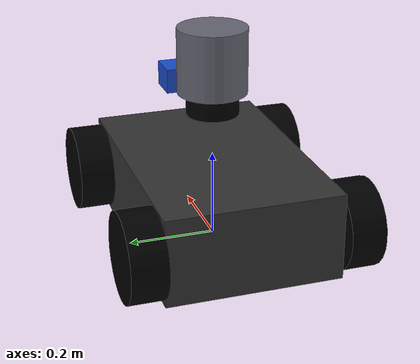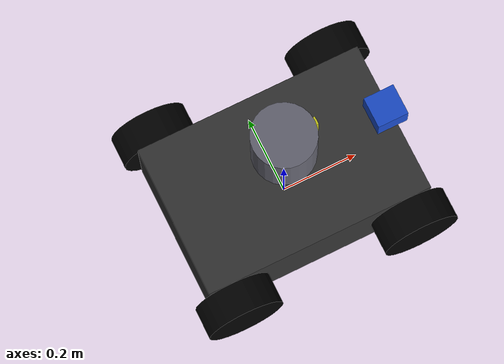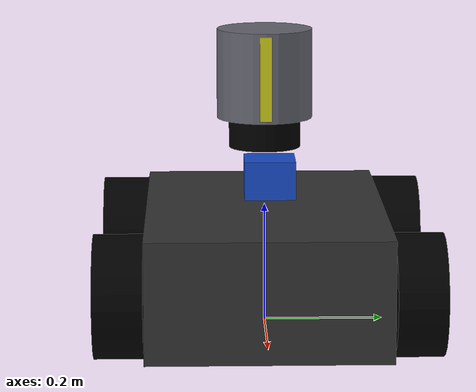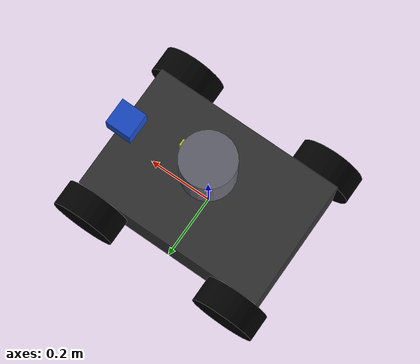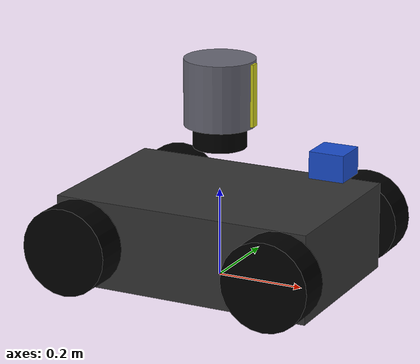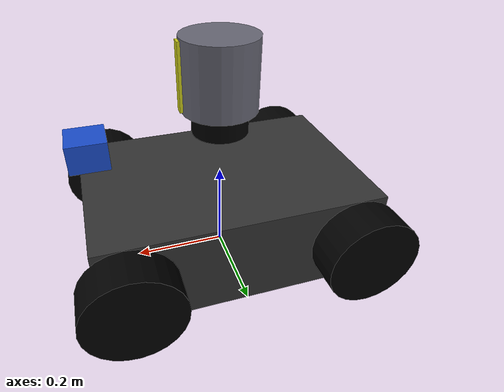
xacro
<?xml version="1.0"?>
<robot xmlns:xacro="http://www.ros.org/wiki/xacro" name="nuclear_robot">

  <xacro:property name="base_mass" value="15.0"/>
  <xacro:property name="base_length" value="0.6"/>
  <xacro:property name="base_width" value="0.4"/>
  <xacro:property name="base_height" value="0.2"/>
  <xacro:property name="wheel_mass" value="2.0"/>
  <xacro:property name="wheel_radius" value="0.1"/>
  <xacro:property name="wheel_width" value="0.08"/>
  <xacro:property name="ptz_mass" value="1.5"/>

  <material name="dark_grey"><color rgba="0.2 0.2 0.2 1.0"/></material>
  <material name="black"><color rgba="0.0 0.0 0.0 1.0"/></material>
  <material name="blue"><color rgba="0.1 0.3 0.8 1.0"/></material>
  <material name="lead_grey"><color rgba="0.4 0.4 0.45 1.0"/></material>
  <material name="warning_yellow"><color rgba="0.8 0.8 0.1 1.0"/></material>

  <!-- 新增的虚拟根节点，解决 Gazebo / ODE 惯性报错退出 (Exit Code 255) 问题 -->
  <link name="base_footprint"/>

  <joint name="base_footprint_to_base_link" type="fixed">
    <parent link="base_footprint"/>
    <child link="base_link"/>
    <origin xyz="0 0 0" rpy="0 0 0"/>
  </joint>

  <link name="base_link">
    <visual>
      <origin xyz="0 0 ${wheel_radius}" rpy="0 0 0"/>
      <geometry><box size="${base_length} ${base_width} ${base_height}"/></geometry>
      <material name="dark_grey"/>
    </visual>
    <collision>
      <origin xyz="0 0 ${wheel_radius}" rpy="0 0 0"/>
      <geometry><box size="${base_length} ${base_width} ${base_height}"/></geometry>
    </collision>
    <inertial>
      <origin xyz="0 0 ${wheel_radius}" rpy="0 0 0"/>
      <mass value="${base_mass}"/>
      <inertia ixx="0.25" ixy="0" ixz="0" iyy="0.5" iyz="0" izz="0.6"/>
    </inertial>
  </link>
  <gazebo reference="base_link"><material>Gazebo/DarkGrey</material></gazebo>

  <xacro:macro name="wheel" params="prefix x_reflect y_reflect">
    <link name="${prefix}_wheel">
      <visual>
        <origin xyz="0 0 0" rpy="1.5708 0 0"/>
        <geometry><cylinder radius="${wheel_radius}" length="${wheel_width}"/></geometry>
        <material name="black"/>
      </visual>
      <collision>
        <origin xyz="0 0 0" rpy="1.5708 0 0"/>
        <geometry><cylinder radius="${wheel_radius}" length="${wheel_width}"/></geometry>
      </collision>
      <inertial>
        <mass value="${wheel_mass}"/>
        <inertia ixx="0.01" ixy="0" ixz="0" iyy="0.01" iyz="0" izz="0.01"/>
      </inertial>
    </link>
    <joint name="${prefix}_wheel_joint" type="continuous">
      <parent link="base_link"/>
      <child link="${prefix}_wheel"/>
      <origin xyz="${x_reflect*base_length/2.5} ${y_reflect*(base_width/2 + wheel_width/2)} ${wheel_radius}" rpy="0 0 0"/>
      <axis xyz="0 1 0"/>
    </joint>
    <gazebo reference="${prefix}_wheel"><material>Gazebo/FlatBlack</material></gazebo>
  </xacro:macro>

  <xacro:wheel prefix="front_left" x_reflect="1" y_reflect="1" />
  <xacro:wheel prefix="front_right" x_reflect="1" y_reflect="-1" />
  <xacro:wheel prefix="rear_left" x_reflect="-1" y_reflect="1" />
  <xacro:wheel prefix="rear_right" x_reflect="-1" y_reflect="-1" />

  <link name="lidar_link">
    <visual>
      <geometry><box size="0.08 0.08 0.06"/></geometry>
      <material name="blue"/>
    </visual>
    <collision>
      <geometry><box size="0.08 0.08 0.06"/></geometry>
    </collision>
  </link>
  <joint name="lidar_joint" type="fixed">
    <parent link="base_link"/>
    <child link="lidar_link"/>
    <origin xyz="${base_length/2.2} 0 ${base_height + 0.1}" rpy="0 0 0"/>
  </joint>

  <gazebo reference="lidar_link">
    <material>Gazebo/Blue</material>
    <sensor type="ray" name="solid_state_lidar">
      <pose>0 0 0 0 0 0</pose>
      <visualize>true</visualize> <update_rate>20</update_rate>
      <ray>
        <scan>
          <horizontal>
            <samples>500</samples>
            <resolution>1</resolution>
            <min_angle>-1.57</min_angle> <max_angle>1.57</max_angle>
          </horizontal>
        </scan>
        <range><min>0.10</min><max>30.0</max><resolution>0.01</resolution></range>
      </ray>
      <plugin name="gazebo_ros_laser" filename="libgazebo_ros_laser.so">
        <topicName>scan</topicName>
        <frameName>lidar_link</frameName>
      </plugin>
    </sensor>
  </gazebo>

  <link name="ptz_base_link">
    <visual>
      <geometry><cylinder radius="0.06" length="0.05"/></geometry>
      <material name="black"/>
    </visual>
  </link>
  <joint name="ptz_base_joint" type="fixed">
    <parent link="base_link"/>
    <child link="ptz_base_link"/>
    <origin xyz="0 0 ${base_height + 0.125}" rpy="0 0 0"/>
  </joint>
  <gazebo reference="ptz_base_link"><material>Gazebo/FlatBlack</material></gazebo>

  <link name="aoa_detector_link">
    <visual>
      <geometry><cylinder radius="0.08" length="0.15"/></geometry>
      <material name="lead_grey"/>
    </visual>
    <inertial>
      <mass value="${ptz_mass}"/>
      <inertia ixx="0.01" ixy="0" ixz="0" iyy="0.01" iyz="0" izz="0.01"/>
    </inertial>
  </link>
  <joint name="ptz_pan_joint" type="continuous">
    <parent link="ptz_base_link"/>
    <child link="aoa_detector_link"/>
    <origin xyz="0 0 0.1" rpy="0 0 0"/>
    <axis xyz="0 0 1"/>
  </joint>
  <gazebo reference="aoa_detector_link"><material>Gazebo/Grey</material></gazebo>

  <link name="collimator_slit_link">
    <visual>
      <geometry><box size="0.09 0.02 0.14"/></geometry>
      <material name="warning_yellow"/>
    </visual>
  </link>
  <joint name="slit_joint" type="fixed">
    <parent link="aoa_detector_link"/>
    <child link="collimator_slit_link"/>
    <origin xyz="0.04 0 0" rpy="0 0 0"/>
  </joint>
  <gazebo reference="collimator_slit_link"><material>Gazebo/Yellow</material></gazebo>

  <gazebo>
    <plugin name="p3d_base_controller" filename="libgazebo_ros_p3d.so">
      <alwaysOn>true</alwaysOn>
      <updateRate>50.0</updateRate>
      <bodyName>base_link</bodyName>
      <topicName>odom</topicName>
      <frameName>world</frameName>
      <gaussianNoise>0.01</gaussianNoise>
      <xyzOffsets>0 0 0</xyzOffsets>
      <rpyOffsets>0 0 0</rpyOffsets>
    </plugin>
  </gazebo>

  <gazebo>
    <plugin name="skid_steer_drive_controller" filename="libgazebo_ros_skid_steer_drive.so">
      <updateRate>50.0</updateRate>
      <leftFrontJoint>front_left_wheel_joint</leftFrontJoint>
      <rightFrontJoint>front_right_wheel_joint</rightFrontJoint>
      <leftRearJoint>rear_left_wheel_joint</leftRearJoint>
      <rightRearJoint>rear_right_wheel_joint</rightRearJoint>
      <wheelSeparation>${base_width + wheel_width}</wheelSeparation>
      <wheelDiameter>${wheel_radius * 2}</wheelDiameter>
      <robotBaseFrame>base_footprint</robotBaseFrame> <!-- 更新为新的虚拟根节点 -->
      <torque>200</torque>
      <commandTopic>cmd_vel</commandTopic>
      <odometryTopic>odom_diff</odometryTopic>
      <odometryFrame>world</odometryFrame>
      <broadcastTF>false</broadcastTF>
    </plugin>
  </gazebo>

</robot>
